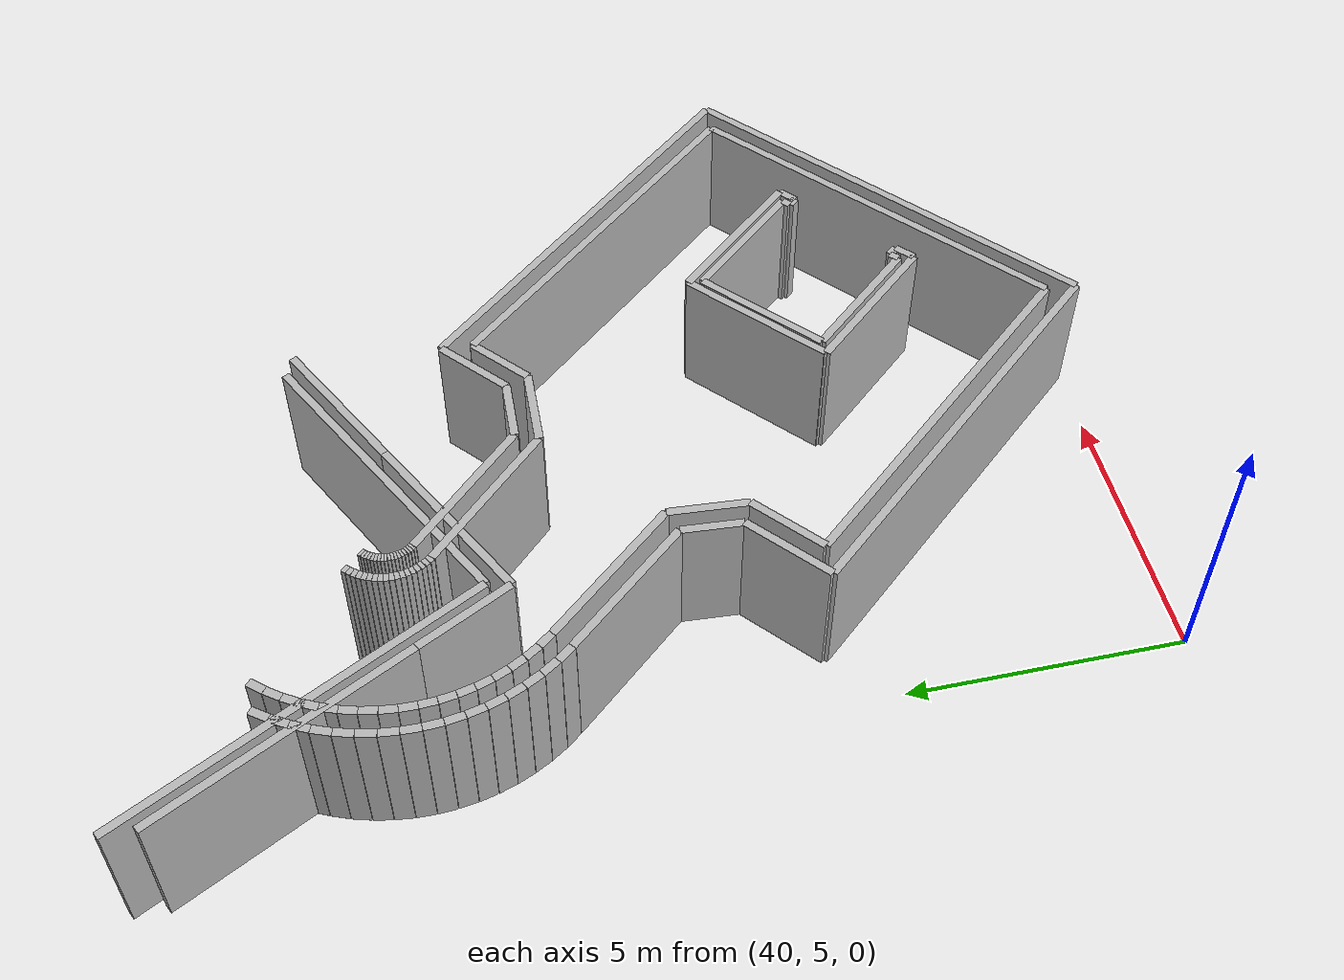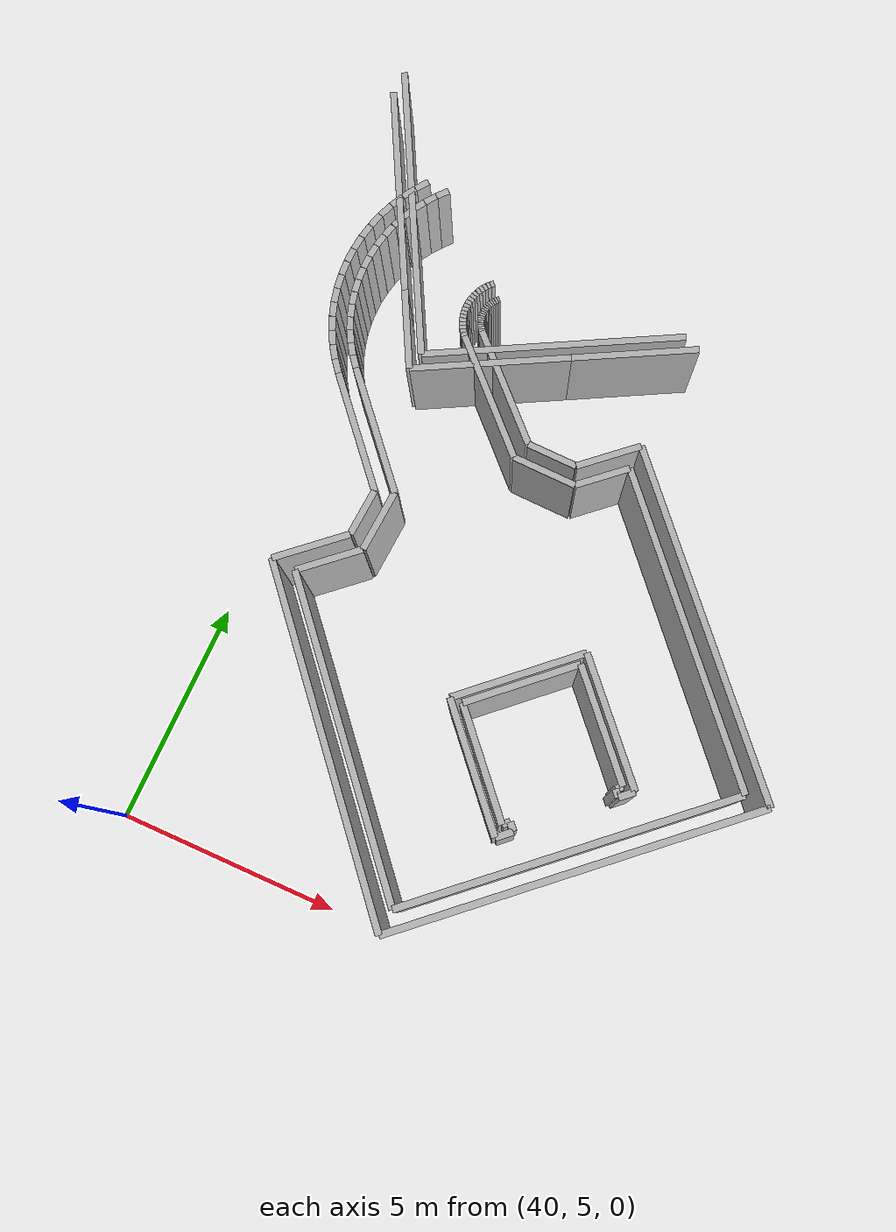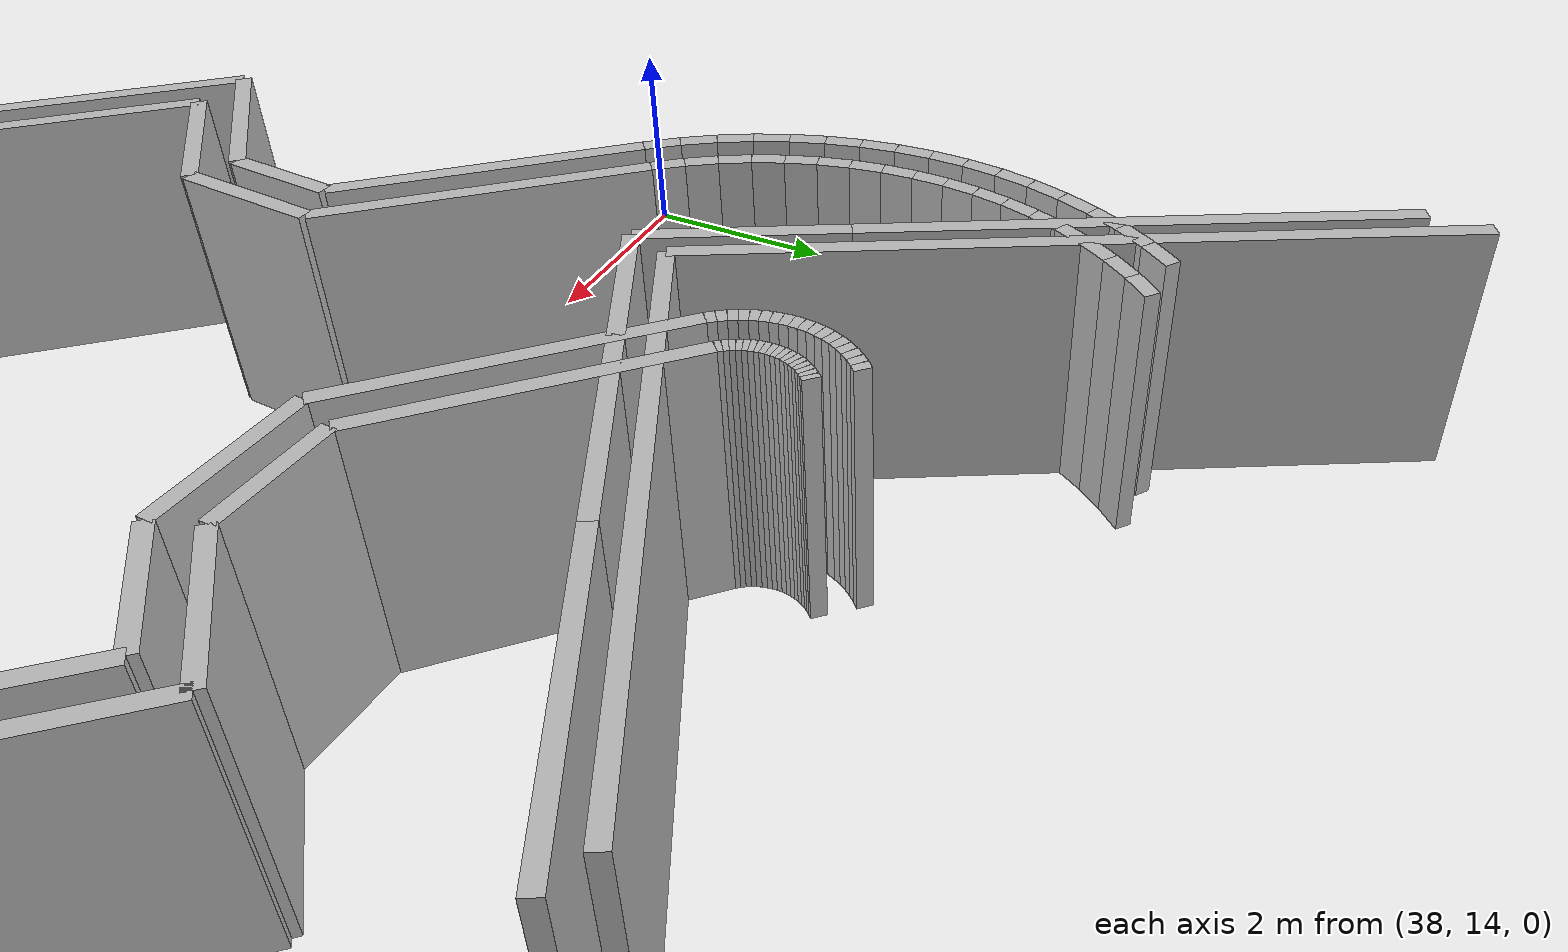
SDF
<sdf version="1.6">
 <model name="sps_0505">
  <static>1</static>
  <allow_auto_disable>0</allow_auto_disable>
  <link name="Wall111">
   <collision name="collision"><geometry><box><size>8.10007 0.15 2.5</size></box></geometry></collision>
   <visual name="visual">
    <geometry><box><size>8.10007 0.15 2.5</size></box></geometry>
    <transparency>0.0</transparency>
   </visual>
   <pose>43.6384 8.1064 1.25 0 -0 2.28845</pose>
  </link>
  <link name="Wall491">
   <collision name="collision"><geometry><box><size>4.96539 0.15 2.5</size></box></geometry></collision>
   <visual name="visual">
    <geometry><box><size>4.96539 0.15 2.5</size></box></geometry>
    <transparency>0.0</transparency>
   </visual>
   <pose>39.8523 20.0937 1.25 0 0 -1.08945</pose>
  </link>
  <link name="Wall492">
   <collision name="collision"><geometry><box><size>1.8674 0.15 2.5</size></box></geometry></collision>
   <visual name="visual">
    <geometry><box><size>1.8674 0.15 2.5</size></box></geometry>
    <transparency>0.0</transparency>
   </visual>
   <pose>41.434 17.0655 1.25 0 0 -1.08945</pose>
  </link>
  <link name="Wall504">
   <collision name="collision"><geometry><box><size>7.29947 0.15 2.5</size></box></geometry></collision>
   <visual name="visual">
    <geometry><box><size>7.29947 0.15 2.5</size></box></geometry>
    <transparency>0.0</transparency>
   </visual>
   <pose>49.5895 13.3021 1.25 0 0 -0.853083</pose>
  </link>
  <link name="Wall835">
   <collision name="collision"><geometry><box><size>1.73339 0.15 2.5</size></box></geometry></collision>
   <visual name="visual">
    <geometry><box><size>1.73339 0.15 2.5</size></box></geometry>
    <transparency>0.0</transparency>
   </visual>
   <pose>41.6279 11.7276 1.25 0 -0 0.717873</pose>
  </link>
  <link name="Wall836">
   <collision name="collision"><geometry><box><size>2.83453 0.15 2.5</size></box></geometry></collision>
   <visual name="visual">
    <geometry><box><size>2.83453 0.15 2.5</size></box></geometry>
    <transparency>0.0</transparency>
   </visual>
   <pose>41.4219 14.4457 1.25 0 -0 2.28852</pose>
  </link>
  <link name="Wall837">
   <collision name="collision"><geometry><box><size>1.14115 0.15 2.5</size></box></geometry></collision>
   <visual name="visual">
    <geometry><box><size>1.14115 0.15 2.5</size></box></geometry>
    <transparency>0.0</transparency>
   </visual>
   <pose>45.5337 15.6559 1.25 0 0 -0.0368063</pose>
  </link>
  <link name="Wall842">
   <collision name="collision"><geometry><box><size>8.30061 0.15 2.5</size></box></geometry></collision>
   <visual name="visual">
    <geometry><box><size>8.30061 0.15 2.5</size></box></geometry>
    <transparency>0.0</transparency>
   </visual>
   <pose>49.4281 7.78511 1.25 0 0 -2.42379</pose>
  </link>
  <link name="Wall1241">
   <collision name="collision"><geometry><box><size>1.08287 0.15 2.5</size></box></geometry></collision>
   <visual name="visual">
    <geometry><box><size>1.08287 0.15 2.5</size></box></geometry>
    <transparency>0.0</transparency>
   </visual>
   <pose>42.3173 12.8379 1.25 0 -0 1.50299</pose>
  </link>
  <link name="Wall1244">
   <collision name="collision"><geometry><box><size>3.0084 0.15 2.5</size></box></geometry></collision>
   <visual name="visual">
    <geometry><box><size>3.0084 0.15 2.5</size></box></geometry>
    <transparency>0.0</transparency>
   </visual>
   <pose>43.7328 16.3517 1.25 0 0 -0.790663</pose>
  </link>
  <link name="Wall1248">
   <collision name="collision"><geometry><box><size>7.50063 0.15 2.5</size></box></geometry></collision>
   <visual name="visual">
    <geometry><box><size>7.50063 0.15 2.5</size></box></geometry>
    <transparency>0.0</transparency>
   </visual>
   <pose>49.1646 8.08629 1.25 0 0 -2.4239</pose>
  </link>
  <link name="Wall1538">
   <collision name="collision"><geometry><box><size>1.45714 0.15 2.5</size></box></geometry></collision>
   <visual name="visual">
    <geometry><box><size>1.45714 0.15 2.5</size></box></geometry>
    <transparency>0.0</transparency>
   </visual>
   <pose>45.5189 15.256 1.25 0 0 -0.0363659</pose>
  </link>
  <link name="Wall1539">
   <collision name="collision"><geometry><box><size>7.29966 0.15 2.5</size></box></geometry></collision>
   <visual name="visual">
    <geometry><box><size>7.29966 0.15 2.5</size></box></geometry>
    <transparency>0.0</transparency>
   </visual>
   <pose>43.9391 8.3694 1.25 0 -0 2.28849</pose>
  </link>
  <link name="Wall1847">
   <collision name="collision"><geometry><box><size>1.25034 0.15 2.5</size></box></geometry></collision>
   <visual name="visual">
    <geometry><box><size>1.25034 0.15 2.5</size></box></geometry>
    <transparency>0.0</transparency>
   </visual>
   <pose>46.7181 15.6405 1.25 0 -0 0.717347</pose>
  </link>
  <link name="Wall2184">
   <collision name="collision"><geometry><box><size>3.00035 0.15 2.5</size></box></geometry></collision>
   <visual name="visual">
    <geometry><box><size>3.00035 0.15 2.5</size></box></geometry>
    <transparency>0.0</transparency>
   </visual>
   <pose>41.7782 14.6467 1.25 0 -0 2.28842</pose>
  </link>
  <link name="Wall2185">
   <collision name="collision"><geometry><box><size>2.82436 0.15 2.5</size></box></geometry></collision>
   <visual name="visual">
    <geometry><box><size>2.82436 0.15 2.5</size></box></geometry>
    <transparency>0.0</transparency>
   </visual>
   <pose>43.9697 16.6803 1.25 0 0 -0.790242</pose>
  </link>
  <link name="Wall2571">
   <collision name="collision"><geometry><box><size>1.50062 0.15 2.5</size></box></geometry></collision>
   <visual name="visual">
    <geometry><box><size>1.50062 0.15 2.5</size></box></geometry>
    <transparency>0.0</transparency>
   </visual>
   <pose>42.1039 11.6125 1.25 0 -0 0.717961</pose>
  </link>
  <link name="Wall2572">
   <collision name="collision"><geometry><box><size>1.41364 0.15 2.5</size></box></geometry></collision>
   <visual name="visual">
    <geometry><box><size>1.41364 0.15 2.5</size></box></geometry>
    <transparency>0.0</transparency>
   </visual>
   <pose>42.7168 12.8113 1.25 0 -0 1.50309</pose>
  </link>
  <link name="Wall2574">
   <collision name="collision"><geometry><box><size>1.49144 0.15 2.5</size></box></geometry></collision>
   <visual name="visual">
    <geometry><box><size>1.49144 0.15 2.5</size></box></geometry>
    <transparency>0.0</transparency>
   </visual>
   <pose>46.6655 16.1255 1.25 0 -0 0.71801</pose>
  </link>
  <link name="Wall2575">
   <collision name="collision"><geometry><box><size>3.5753 0.15 2.5</size></box></geometry></collision>
   <visual name="visual">
    <geometry><box><size>3.5753 0.15 2.5</size></box></geometry>
    <transparency>0.0</transparency>
   </visual>
   <pose>43.4508 17.0655 1.25 0 -0 0.48133</pose>
  </link>
  <link name="Wall2576">
   <collision name="collision"><geometry><box><size>2.83912 0.15 2.5</size></box></geometry></collision>
   <visual name="visual">
    <geometry><box><size>2.83912 0.15 2.5</size></box></geometry>
    <transparency>0.0</transparency>
   </visual>
   <pose>46.2936 18.5503 1.25 0 -0 0.48133</pose>
  </link>
  <link name="Wall2580">
   <collision name="collision"><geometry><box><size>8.09961 0.15 2.5</size></box></geometry></collision>
   <visual name="visual">
    <geometry><box><size>8.09961 0.15 2.5</size></box></geometry>
    <transparency>0.0</transparency>
   </visual>
   <pose>49.8907 13.5655 1.25 0 0 -0.85302</pose>
  </link>
  <link name="Wall6915">
   <collision name="collision"><geometry><box><size>0.340145 0.15 2.5</size></box></geometry></collision>
   <visual name="visual">
    <geometry><box><size>0.340145 0.15 2.5</size></box></geometry>
    <transparency>0.0</transparency>
   </visual>
   <pose>40.3841 15.6465 1.25 0 -0 2.24201</pose>
  </link>
  <link name="Wall6916">
   <collision name="collision"><geometry><box><size>0.339766 0.15 2.5</size></box></geometry></collision>
   <visual name="visual">
    <geometry><box><size>0.339766 0.15 2.5</size></box></geometry>
    <transparency>0.0</transparency>
   </visual>
   <pose>40.1846 15.9214 1.25 0 -0 2.15516</pose>
  </link>
  <link name="Wall6917">
   <collision name="collision"><geometry><box><size>0.339996 0.15 2.5</size></box></geometry></collision>
   <visual name="visual">
    <geometry><box><size>0.339996 0.15 2.5</size></box></geometry>
    <transparency>0.0</transparency>
   </visual>
   <pose>40.0098 16.2125 1.25 0 -0 2.06801</pose>
  </link>
  <link name="Wall6918">
   <collision name="collision"><geometry><box><size>0.340044 0.15 2.5</size></box></geometry></collision>
   <visual name="visual">
    <geometry><box><size>0.340044 0.15 2.5</size></box></geometry>
    <transparency>0.0</transparency>
   </visual>
   <pose>39.8609 16.5178 1.25 0 -0 1.98104</pose>
  </link>
  <link name="Wall6919">
   <collision name="collision"><geometry><box><size>0.340065 0.15 2.5</size></box></geometry></collision>
   <visual name="visual">
    <geometry><box><size>0.340065 0.15 2.5</size></box></geometry>
    <transparency>0.0</transparency>
   </visual>
   <pose>39.7389 16.8349 1.25 0 -0 1.89465</pose>
  </link>
  <link name="Wall6920">
   <collision name="collision"><geometry><box><size>0.339835 0.15 2.5</size></box></geometry></collision>
   <visual name="visual">
    <geometry><box><size>0.339835 0.15 2.5</size></box></geometry>
    <transparency>0.0</transparency>
   </visual>
   <pose>39.645 17.1613 1.25 0 -0 1.80719</pose>
  </link>
  <link name="Wall6921">
   <collision name="collision"><geometry><box><size>0.339968 0.15 2.5</size></box></geometry></collision>
   <visual name="visual">
    <geometry><box><size>0.339968 0.15 2.5</size></box></geometry>
    <transparency>0.0</transparency>
   </visual>
   <pose>39.5799 17.4946 1.25 0 -0 1.72018</pose>
  </link>
  <link name="Wall6922">
   <collision name="collision"><geometry><box><size>0.339909 0.15 2.5</size></box></geometry></collision>
   <visual name="visual">
    <geometry><box><size>0.339909 0.15 2.5</size></box></geometry>
    <transparency>0.0</transparency>
   </visual>
   <pose>39.5439 17.8323 1.25 0 -0 1.63386</pose>
  </link>
  <link name="Wall6923">
   <collision name="collision"><geometry><box><size>0.34007 0.15 2.5</size></box></geometry></collision>
   <visual name="visual">
    <geometry><box><size>0.34007 0.15 2.5</size></box></geometry>
    <transparency>0.0</transparency>
   </visual>
   <pose>39.5374 18.1719 1.25 0 -0 1.54603</pose>
  </link>
  <link name="Wall6924">
   <collision name="collision"><geometry><box><size>0.339915 0.15 2.5</size></box></geometry></collision>
   <visual name="visual">
    <geometry><box><size>0.339915 0.15 2.5</size></box></geometry>
    <transparency>0.0</transparency>
   </visual>
   <pose>39.5604 18.5108 1.25 0 -0 1.45996</pose>
  </link>
  <link name="Wall6925">
   <collision name="collision"><geometry><box><size>0.340043 0.15 2.5</size></box></geometry></collision>
   <visual name="visual">
    <geometry><box><size>0.340043 0.15 2.5</size></box></geometry>
    <transparency>0.0</transparency>
   </visual>
   <pose>39.6128 18.8464 1.25 0 -0 1.37242</pose>
  </link>
  <link name="Wall6926">
   <collision name="collision"><geometry><box><size>0.339947 0.15 2.5</size></box></geometry></collision>
   <visual name="visual">
    <geometry><box><size>0.339947 0.15 2.5</size></box></geometry>
    <transparency>0.0</transparency>
   </visual>
   <pose>39.6941 19.1762 1.25 0 -0 1.28579</pose>
  </link>
  <link name="Wall6927">
   <collision name="collision"><geometry><box><size>0.33986 0.15 2.5</size></box></geometry></collision>
   <visual name="visual">
    <geometry><box><size>0.33986 0.15 2.5</size></box></geometry>
    <transparency>0.0</transparency>
   </visual>
   <pose>39.8036 19.4976 1.25 0 -0 1.19859</pose>
  </link>
  <link name="Wall6928">
   <collision name="collision"><geometry><box><size>0.339891 0.15 2.5</size></box></geometry></collision>
   <visual name="visual">
    <geometry><box><size>0.339891 0.15 2.5</size></box></geometry>
    <transparency>0.0</transparency>
   </visual>
   <pose>39.9406 19.8083 1.25 0 -0 1.11245</pose>
  </link>
  <link name="Wall6929">
   <collision name="collision"><geometry><box><size>0.340061 0.15 2.5</size></box></geometry></collision>
   <visual name="visual">
    <geometry><box><size>0.340061 0.15 2.5</size></box></geometry>
    <transparency>0.0</transparency>
   </visual>
   <pose>40.1041 20.106 1.25 0 -0 1.02462</pose>
  </link>
  <link name="Wall6930">
   <collision name="collision"><geometry><box><size>0.339949 0.15 2.5</size></box></geometry></collision>
   <visual name="visual">
    <geometry><box><size>0.339949 0.15 2.5</size></box></geometry>
    <transparency>0.0</transparency>
   </visual>
   <pose>40.293 20.3884 1.25 0 -0 0.938212</pose>
  </link>
  <link name="Wall9624">
   <collision name="collision"><geometry><box><size>0.0522454 0.15 2.5</size></box></geometry></collision>
   <visual name="visual">
    <geometry><box><size>0.0522454 0.15 2.5</size></box></geometry>
    <transparency>0.0</transparency>
   </visual>
   <pose>42.9597 17.7041 1.25 0 -0 2.24444</pose>
  </link>
  <link name="Wall9625">
   <collision name="collision"><geometry><box><size>0.0523934 0.15 2.5</size></box></geometry></collision>
   <visual name="visual">
    <geometry><box><size>0.0523934 0.15 2.5</size></box></geometry>
    <transparency>0.0</transparency>
   </visual>
   <pose>42.929 17.7464 1.25 0 -0 2.15298</pose>
  </link>
  <link name="Wall9626">
   <collision name="collision"><geometry><box><size>0.0523551 0.15 2.5</size></box></geometry></collision>
   <visual name="visual">
    <geometry><box><size>0.0523551 0.15 2.5</size></box></geometry>
    <transparency>0.0</transparency>
   </visual>
   <pose>42.9022 17.7913 1.25 0 -0 2.06782</pose>
  </link>
  <link name="Wall9627">
   <collision name="collision"><geometry><box><size>0.0523499 0.15 2.5</size></box></geometry></collision>
   <visual name="visual">
    <geometry><box><size>0.0523499 0.15 2.5</size></box></geometry>
    <transparency>0.0</transparency>
   </visual>
   <pose>42.8793 17.8383 1.25 0 -0 1.97967</pose>
  </link>
  <link name="Wall9628">
   <collision name="collision"><geometry><box><size>0.0522672 0.15 2.5</size></box></geometry></collision>
   <visual name="visual">
    <geometry><box><size>0.0522672 0.15 2.5</size></box></geometry>
    <transparency>0.0</transparency>
   </visual>
   <pose>42.8606 17.8871 1.25 0 -0 1.89402</pose>
  </link>
  <link name="Wall9629">
   <collision name="collision"><geometry><box><size>0.0522872 0.15 2.5</size></box></geometry></collision>
   <visual name="visual">
    <geometry><box><size>0.0522872 0.15 2.5</size></box></geometry>
    <transparency>0.0</transparency>
   </visual>
   <pose>42.8462 17.9373 1.25 0 -0 1.80643</pose>
  </link>
  <link name="Wall9630">
   <collision name="collision"><geometry><box><size>0.0523441 0.15 2.5</size></box></geometry></collision>
   <visual name="visual">
    <geometry><box><size>0.0523441 0.15 2.5</size></box></geometry>
    <transparency>0.0</transparency>
   </visual>
   <pose>42.8361 17.9886 1.25 0 -0 1.72061</pose>
  </link>
  <link name="Wall9631">
   <collision name="collision"><geometry><box><size>0.0522929 0.15 2.5</size></box></geometry></collision>
   <visual name="visual">
    <geometry><box><size>0.0522929 0.15 2.5</size></box></geometry>
    <transparency>0.0</transparency>
   </visual>
   <pose>42.8306 18.0406 1.25 0 -0 1.63504</pose>
  </link>
  <link name="Wall9632">
   <collision name="collision"><geometry><box><size>0.052442 0.15 2.5</size></box></geometry></collision>
   <visual name="visual">
    <geometry><box><size>0.052442 0.15 2.5</size></box></geometry>
    <transparency>0.0</transparency>
   </visual>
   <pose>42.8295 18.0929 1.25 0 -0 1.54868</pose>
  </link>
  <link name="Wall9633">
   <collision name="collision"><geometry><box><size>0.0523518 0.15 2.5</size></box></geometry></collision>
   <visual name="visual">
    <geometry><box><size>0.0523518 0.15 2.5</size></box></geometry>
    <transparency>0.0</transparency>
   </visual>
   <pose>42.8331 18.1451 1.25 0 -0 1.45512</pose>
  </link>
  <link name="Wall9634">
   <collision name="collision"><geometry><box><size>0.0523927 0.15 2.5</size></box></geometry></collision>
   <visual name="visual">
    <geometry><box><size>0.0523927 0.15 2.5</size></box></geometry>
    <transparency>0.0</transparency>
   </visual>
   <pose>42.8412 18.1968 1.25 0 -0 1.375</pose>
  </link>
  <link name="Wall9635">
   <collision name="collision"><geometry><box><size>0.0523585 0.15 2.5</size></box></geometry></collision>
   <visual name="visual">
    <geometry><box><size>0.0523585 0.15 2.5</size></box></geometry>
    <transparency>0.0</transparency>
   </visual>
   <pose>42.8537 18.2476 1.25 0 -0 1.28481</pose>
  </link>
  <link name="Wall9636">
   <collision name="collision"><geometry><box><size>0.0523311 0.15 2.5</size></box></geometry></collision>
   <visual name="visual">
    <geometry><box><size>0.0523311 0.15 2.5</size></box></geometry>
    <transparency>0.0</transparency>
   </visual>
   <pose>42.8705 18.2971 1.25 0 -0 1.1996</pose>
  </link>
  <link name="Wall9637">
   <collision name="collision"><geometry><box><size>0.0522715 0.15 2.5</size></box></geometry></collision>
   <visual name="visual">
    <geometry><box><size>0.0522715 0.15 2.5</size></box></geometry>
    <transparency>0.0</transparency>
   </visual>
   <pose>42.8917 18.3449 1.25 0 -0 1.10976</pose>
  </link>
  <link name="Wall9638">
   <collision name="collision"><geometry><box><size>0.0523901 0.15 2.5</size></box></geometry></collision>
   <visual name="visual">
    <geometry><box><size>0.0523901 0.15 2.5</size></box></geometry>
    <transparency>0.0</transparency>
   </visual>
   <pose>42.9169 18.3907 1.25 0 -0 1.02578</pose>
  </link>
  <link name="Wall9639">
   <collision name="collision"><geometry><box><size>0.0523461 0.15 2.5</size></box></geometry></collision>
   <visual name="visual">
    <geometry><box><size>0.0523461 0.15 2.5</size></box></geometry>
    <transparency>0.0</transparency>
   </visual>
   <pose>42.9459 18.4342 1.25 0 -0 0.936856</pose>
  </link>
  <link name="Wall9640">
   <collision name="collision"><geometry><box><size>0.0523414 0.15 2.5</size></box></geometry></collision>
   <visual name="visual">
    <geometry><box><size>0.0523414 0.15 2.5</size></box></geometry>
    <transparency>0.0</transparency>
   </visual>
   <pose>42.9787 18.475 1.25 0 -0 0.853063</pose>
  </link>
  <link name="Wall9641">
   <collision name="collision"><geometry><box><size>0.05232 0.15 2.5</size></box></geometry></collision>
   <visual name="visual">
    <geometry><box><size>0.05232 0.15 2.5</size></box></geometry>
    <transparency>0.0</transparency>
   </visual>
   <pose>43.0148 18.5128 1.25 0 -0 0.763949</pose>
  </link>
  <link name="Wall12904">
   <collision name="collision"><geometry><box><size>0.305219 0.15 2.5</size></box></geometry></collision>
   <visual name="visual">
    <geometry><box><size>0.305219 0.15 2.5</size></box></geometry>
    <transparency>0.0</transparency>
   </visual>
   <pose>40.6967 15.8964 1.25 0 -0 2.24198</pose>
  </link>
  <link name="Wall12905">
   <collision name="collision"><geometry><box><size>0.304945 0.15 2.5</size></box></geometry></collision>
   <visual name="visual">
    <geometry><box><size>0.304945 0.15 2.5</size></box></geometry>
    <transparency>0.0</transparency>
   </visual>
   <pose>40.5178 16.1431 1.25 0 -0 2.15486</pose>
  </link>
  <link name="Wall12906">
   <collision name="collision"><geometry><box><size>0.304929 0.15 2.5</size></box></geometry></collision>
   <visual name="visual">
    <geometry><box><size>0.304929 0.15 2.5</size></box></geometry>
    <transparency>0.0</transparency>
   </visual>
   <pose>40.361 16.4043 1.25 0 -0 2.06802</pose>
  </link>
  <link name="Wall12907">
   <collision name="collision"><geometry><box><size>0.305134 0.15 2.5</size></box></geometry></collision>
   <visual name="visual">
    <geometry><box><size>0.305134 0.15 2.5</size></box></geometry>
    <transparency>0.0</transparency>
   </visual>
   <pose>40.2273 16.6782 1.25 0 -0 1.98128</pose>
  </link>
  <link name="Wall12908">
   <collision name="collision"><geometry><box><size>0.305072 0.15 2.5</size></box></geometry></collision>
   <visual name="visual">
    <geometry><box><size>0.305072 0.15 2.5</size></box></geometry>
    <transparency>0.0</transparency>
   </visual>
   <pose>40.118 16.9627 1.25 0 -0 1.89432</pose>
  </link>
  <link name="Wall12909">
   <collision name="collision"><geometry><box><size>0.304868 0.15 2.5</size></box></geometry></collision>
   <visual name="visual">
    <geometry><box><size>0.304868 0.15 2.5</size></box></geometry>
    <transparency>0.0</transparency>
   </visual>
   <pose>40.0338 17.2555 1.25 0 -0 1.80723</pose>
  </link>
  <link name="Wall12910">
   <collision name="collision"><geometry><box><size>0.304974 0.15 2.5</size></box></geometry></collision>
   <visual name="visual">
    <geometry><box><size>0.304974 0.15 2.5</size></box></geometry>
    <transparency>0.0</transparency>
   </visual>
   <pose>39.9754 17.5545 1.25 0 -0 1.72025</pose>
  </link>
  <link name="Wall12911">
   <collision name="collision"><geometry><box><size>0.305233 0.15 2.5</size></box></geometry></collision>
   <visual name="visual">
    <geometry><box><size>0.305233 0.15 2.5</size></box></geometry>
    <transparency>0.0</transparency>
   </visual>
   <pose>39.943 17.8576 1.25 0 -0 1.63383</pose>
  </link>
  <link name="Wall12912">
   <collision name="collision"><geometry><box><size>0.304901 0.15 2.5</size></box></geometry></collision>
   <visual name="visual">
    <geometry><box><size>0.304901 0.15 2.5</size></box></geometry>
    <transparency>0.0</transparency>
   </visual>
   <pose>39.9372 18.1623 1.25 0 -0 1.54637</pose>
  </link>
  <link name="Wall12913">
   <collision name="collision"><geometry><box><size>0.305035 0.15 2.5</size></box></geometry></collision>
   <visual name="visual">
    <geometry><box><size>0.305035 0.15 2.5</size></box></geometry>
    <transparency>0.0</transparency>
   </visual>
   <pose>39.9578 18.4663 1.25 0 -0 1.45992</pose>
  </link>
  <link name="Wall12914">
   <collision name="collision"><geometry><box><size>0.305151 0.15 2.5</size></box></geometry></collision>
   <visual name="visual">
    <geometry><box><size>0.305151 0.15 2.5</size></box></geometry>
    <transparency>0.0</transparency>
   </visual>
   <pose>40.0046 18.7675 1.25 0 -0 1.37289</pose>
  </link>
  <link name="Wall12915">
   <collision name="collision"><geometry><box><size>0.304927 0.15 2.5</size></box></geometry></collision>
   <visual name="visual">
    <geometry><box><size>0.304927 0.15 2.5</size></box></geometry>
    <transparency>0.0</transparency>
   </visual>
   <pose>40.0775 19.0634 1.25 0 -0 1.28551</pose>
  </link>
  <link name="Wall12916">
   <collision name="collision"><geometry><box><size>0.305154 0.15 2.5</size></box></geometry></collision>
   <visual name="visual">
    <geometry><box><size>0.305154 0.15 2.5</size></box></geometry>
    <transparency>0.0</transparency>
   </visual>
   <pose>40.176 19.3518 1.25 0 -0 1.19842</pose>
  </link>
  <link name="Wall12917">
   <collision name="collision"><geometry><box><size>0.305061 0.15 2.5</size></box></geometry></collision>
   <visual name="visual">
    <geometry><box><size>0.305061 0.15 2.5</size></box></geometry>
    <transparency>0.0</transparency>
   </visual>
   <pose>40.299 19.6307 1.25 0 -0 1.11234</pose>
  </link>
  <link name="Wall12918">
   <collision name="collision"><geometry><box><size>0.304974 0.15 2.5</size></box></geometry></collision>
   <visual name="visual">
    <geometry><box><size>0.304974 0.15 2.5</size></box></geometry>
    <transparency>0.0</transparency>
   </visual>
   <pose>40.4457 19.8978 1.25 0 -0 1.02471</pose>
  </link>
  <link name="Wall12919">
   <collision name="collision"><geometry><box><size>0.305096 0.15 2.5</size></box></geometry></collision>
   <visual name="visual">
    <geometry><box><size>0.305096 0.15 2.5</size></box></geometry>
    <transparency>0.0</transparency>
   </visual>
   <pose>40.6151 20.1511 1.25 0 -0 0.938058</pose>
  </link>
  <link name="Wall12920">
   <collision name="collision"><geometry><box><size>0.304971 0.15 2.5</size></box></geometry></collision>
   <visual name="visual">
    <geometry><box><size>0.304971 0.15 2.5</size></box></geometry>
    <transparency>0.0</transparency>
   </visual>
   <pose>40.8058 20.3888 1.25 0 -0 0.851251</pose>
  </link>
  <link name="Wall12922">
   <collision name="collision"><geometry><box><size>7.01529 0.15 2.5</size></box></geometry></collision>
   <visual name="visual">
    <geometry><box><size>7.01529 0.15 2.5</size></box></geometry>
    <transparency>0.0</transparency>
   </visual>
   <pose>40.3463 19.7556 1.25 0 0 -1.08946</pose>
  </link>
  <link name="Wall12923">
   <collision name="collision"><geometry><box><size>5.87311 0.15 2.5</size></box></geometry></collision>
   <visual name="visual">
    <geometry><box><size>5.87311 0.15 2.5</size></box></geometry>
    <transparency>0.0</transparency>
   </visual>
   <pose>44.5731 18.006 1.25 0 -0 0.481328</pose>
  </link>
  <link name="Wall16724">
   <collision name="collision"><geometry><box><size>2.98665 0.15 2.5</size></box></geometry></collision>
   <visual name="visual">
    <geometry><box><size>2.98665 0.15 2.5</size></box></geometry>
    <transparency>0.0</transparency>
   </visual>
   <pose>46.7842 10.966 1.25 0 -0 0.728983</pose>
  </link>
  <link name="Wall16725">
   <collision name="collision"><geometry><box><size>3.01582 0.15 2.5</size></box></geometry></collision>
   <visual name="visual">
    <geometry><box><size>3.01582 0.15 2.5</size></box></geometry>
    <transparency>0.0</transparency>
   </visual>
   <pose>48.9025 10.8361 1.25 0 0 -0.84174</pose>
  </link>
  <link name="Wall16726">
   <collision name="collision"><geometry><box><size>0.361328 0.15 2.5</size></box></geometry></collision>
   <visual name="visual">
    <geometry><box><size>0.361328 0.15 2.5</size></box></geometry>
    <transparency>0.0</transparency>
   </visual>
   <pose>49.7724 9.59111 1.25 0 0 -2.41224</pose>
  </link>
  <link name="Wall16727">
   <collision name="collision"><geometry><box><size>0.182154 0.15 2.5</size></box></geometry></collision>
   <visual name="visual">
    <geometry><box><size>0.182154 0.15 2.5</size></box></geometry>
    <transparency>0.0</transparency>
   </visual>
   <pose>49.577 9.53862 1.25 0 -0 2.30025</pose>
  </link>
  <link name="Wall16728">
   <collision name="collision"><geometry><box><size>0.163846 0.15 2.5</size></box></geometry></collision>
   <visual name="visual">
    <geometry><box><size>0.163846 0.15 2.5</size></box></geometry>
    <transparency>0.0</transparency>
   </visual>
   <pose>49.5774 9.66099 1.25 0 -0 0.727416</pose>
  </link>
  <link name="Wall16729">
   <collision name="collision"><geometry><box><size>2.65092 0.15 2.5</size></box></geometry></collision>
   <visual name="visual">
    <geometry><box><size>2.65092 0.15 2.5</size></box></geometry>
    <transparency>0.0</transparency>
   </visual>
   <pose>48.7559 10.7042 1.25 0 -0 2.29965</pose>
  </link>
  <link name="Wall16730">
   <collision name="collision"><geometry><box><size>2.59044 0.15 2.5</size></box></geometry></collision>
   <visual name="visual">
    <geometry><box><size>2.59044 0.15 2.5</size></box></geometry>
    <transparency>0.0</transparency>
   </visual>
   <pose>46.907 10.8302 1.25 0 0 -2.41267</pose>
  </link>
  <link name="Wall16731">
   <collision name="collision"><geometry><box><size>2.60971 0.15 2.5</size></box></geometry></collision>
   <visual name="visual">
    <geometry><box><size>2.60971 0.15 2.5</size></box></geometry>
    <transparency>0.0</transparency>
   </visual>
   <pose>46.8101 8.99428 1.25 0 0 -0.841788</pose>
  </link>
  <link name="Wall16732">
   <collision name="collision"><geometry><box><size>0.179473 0.15 2.5</size></box></geometry></collision>
   <visual name="visual">
    <geometry><box><size>0.179473 0.15 2.5</size></box></geometry>
    <transparency>0.0</transparency>
   </visual>
   <pose>47.7462 8.08089 1.25 0 -0 0.72958</pose>
  </link>
  <link name="Wall16733">
   <collision name="collision"><geometry><box><size>0.201395 0.15 2.5</size></box></geometry></collision>
   <visual name="visual">
    <geometry><box><size>0.201395 0.15 2.5</size></box></geometry>
    <transparency>0.0</transparency>
   </visual>
   <pose>47.8801 8.0656 1.25 0 0 -0.841788</pose>
  </link>
  <link name="Wall16734">
   <collision name="collision"><geometry><box><size>0.394624 0.15 2.5</size></box></geometry></collision>
   <visual name="visual">
    <geometry><box><size>0.394624 0.15 2.5</size></box></geometry>
    <transparency>0.0</transparency>
   </visual>
   <pose>47.8 7.85908 1.25 0 0 -2.41277</pose>
  </link>
  <link name="Wall16735">
   <collision name="collision"><geometry><box><size>2.99399 0.15 2.5</size></box></geometry></collision>
   <visual name="visual">
    <geometry><box><size>2.99399 0.15 2.5</size></box></geometry>
    <transparency>0.0</transparency>
   </visual>
   <pose>46.6557 8.84419 1.25 0 -0 2.2998</pose>
  </link>
  <link name="Wall16736">
   <collision name="collision"><geometry><box><size>0.0159563 0.15 2.5</size></box></geometry></collision>
   <visual name="visual">
    <geometry><box><size>0.0159563 0.15 2.5</size></box></geometry>
    <transparency>0.0</transparency>
   </visual>
   <pose>45.6645 9.96599 1.25 0 -0 0.723148</pose>
  </link>
  <link name="Wall27782">
   <collision name="collision"><geometry><box><size>0.0870951 0.15 2.5</size></box></geometry></collision>
   <visual name="visual">
    <geometry><box><size>0.0870951 0.15 2.5</size></box></geometry>
    <transparency>0.0</transparency>
   </visual>
   <pose>42.6477 17.455 1.25 0 -0 2.24247</pose>
  </link>
  <link name="Wall27783">
   <collision name="collision"><geometry><box><size>0.087198 0.15 2.5</size></box></geometry></collision>
   <visual name="visual">
    <geometry><box><size>0.087198 0.15 2.5</size></box></geometry>
    <transparency>0.0</transparency>
   </visual>
   <pose>42.5966 17.5255 1.25 0 -0 2.15336</pose>
  </link>
  <link name="Wall27784">
   <collision name="collision"><geometry><box><size>0.087018 0.15 2.5</size></box></geometry></collision>
   <visual name="visual">
    <geometry><box><size>0.087018 0.15 2.5</size></box></geometry>
    <transparency>0.0</transparency>
   </visual>
   <pose>42.5518 17.6001 1.25 0 -0 2.06958</pose>
  </link>
  <link name="Wall27785">
   <collision name="collision"><geometry><box><size>0.087197 0.15 2.5</size></box></geometry></collision>
   <visual name="visual">
    <geometry><box><size>0.087197 0.15 2.5</size></box></geometry>
    <transparency>0.0</transparency>
   </visual>
   <pose>42.5136 17.6783 1.25 0 -0 1.9812</pose>
  </link>
  <link name="Wall27786">
   <collision name="collision"><geometry><box><size>0.0871248 0.15 2.5</size></box></geometry></collision>
   <visual name="visual">
    <geometry><box><size>0.0871248 0.15 2.5</size></box></geometry>
    <transparency>0.0</transparency>
   </visual>
   <pose>42.4824 17.7596 1.25 0 -0 1.89299</pose>
  </link>
  <link name="Wall27787">
   <collision name="collision"><geometry><box><size>0.0872374 0.15 2.5</size></box></geometry></collision>
   <visual name="visual">
    <geometry><box><size>0.0872374 0.15 2.5</size></box></geometry>
    <transparency>0.0</transparency>
   </visual>
   <pose>42.4584 17.8433 1.25 0 -0 1.80882</pose>
  </link>
  <link name="Wall27788">
   <collision name="collision"><geometry><box><size>0.0869485 0.15 2.5</size></box></geometry></collision>
   <visual name="visual">
    <geometry><box><size>0.0869485 0.15 2.5</size></box></geometry>
    <transparency>0.0</transparency>
   </visual>
   <pose>42.4417 17.9287 1.25 0 -0 1.71875</pose>
  </link>
  <link name="Wall27789">
   <collision name="collision"><geometry><box><size>0.0871562 0.15 2.5</size></box></geometry></collision>
   <visual name="visual">
    <geometry><box><size>0.0871562 0.15 2.5</size></box></geometry>
    <transparency>0.0</transparency>
   </visual>
   <pose>42.4325 18.0152 1.25 0 -0 1.63527</pose>
  </link>
  <link name="Wall27790">
   <collision name="collision"><geometry><box><size>0.0872469 0.15 2.5</size></box></geometry></collision>
   <visual name="visual">
    <geometry><box><size>0.0872469 0.15 2.5</size></box></geometry>
    <transparency>0.0</transparency>
   </visual>
   <pose>42.4307 18.1023 1.25 0 -0 1.54561</pose>
  </link>
  <link name="Wall27791">
   <collision name="collision"><geometry><box><size>0.0871374 0.15 2.5</size></box></geometry></collision>
   <visual name="visual">
    <geometry><box><size>0.0871374 0.15 2.5</size></box></geometry>
    <transparency>0.0</transparency>
   </visual>
   <pose>42.4366 18.1892 1.25 0 -0 1.4606</pose>
  </link>
  <link name="Wall27792">
   <collision name="collision"><geometry><box><size>0.0871056 0.15 2.5</size></box></geometry></collision>
   <visual name="visual">
    <geometry><box><size>0.0871056 0.15 2.5</size></box></geometry>
    <transparency>0.0</transparency>
   </visual>
   <pose>42.45 18.2752 1.25 0 -0 1.37189</pose>
  </link>
  <link name="Wall27793">
   <collision name="collision"><geometry><box><size>0.0871094 0.15 2.5</size></box></geometry></collision>
   <visual name="visual">
    <geometry><box><size>0.0871094 0.15 2.5</size></box></geometry>
    <transparency>0.0</transparency>
   </visual>
   <pose>42.4708 18.3597 1.25 0 -0 1.28672</pose>
  </link>
  <link name="Wall27794">
   <collision name="collision"><geometry><box><size>0.0871829 0.15 2.5</size></box></geometry></collision>
   <visual name="visual">
    <geometry><box><size>0.0871829 0.15 2.5</size></box></geometry>
    <transparency>0.0</transparency>
   </visual>
   <pose>42.499 18.4421 1.25 0 -0 1.19744</pose>
  </link>
  <link name="Wall27795">
   <collision name="collision"><geometry><box><size>0.0870197 0.15 2.5</size></box></geometry></collision>
   <visual name="visual">
    <geometry><box><size>0.0870197 0.15 2.5</size></box></geometry>
    <transparency>0.0</transparency>
   </visual>
   <pose>42.5341 18.5217 1.25 0 -0 1.11154</pose>
  </link>
  <link name="Wall27796">
   <collision name="collision"><geometry><box><size>0.0872262 0.15 2.5</size></box></geometry></collision>
   <visual name="visual">
    <geometry><box><size>0.0872262 0.15 2.5</size></box></geometry>
    <transparency>0.0</transparency>
   </visual>
   <pose>42.576 18.598 1.25 0 -0 1.0257</pose>
  </link>
  <link name="Wall27797">
   <collision name="collision"><geometry><box><size>0.0870423 0.15 2.5</size></box></geometry></collision>
   <visual name="visual">
    <geometry><box><size>0.0870423 0.15 2.5</size></box></geometry>
    <transparency>0.0</transparency>
   </visual>
   <pose>42.6244 18.6704 1.25 0 -0 0.939216</pose>
  </link>
  <link name="Wall27798">
   <collision name="collision"><geometry><box><size>0.0871534 0.15 2.5</size></box></geometry></collision>
   <visual name="visual">
    <geometry><box><size>0.0871534 0.15 2.5</size></box></geometry>
    <transparency>0.0</transparency>
   </visual>
   <pose>42.6788 18.7383 1.25 0 -0 0.851308</pose>
  </link>
  <link name="Wall27799">
   <collision name="collision"><geometry><box><size>0.0871584 0.15 2.5</size></box></geometry></collision>
   <visual name="visual">
    <geometry><box><size>0.0871584 0.15 2.5</size></box></geometry>
    <transparency>0.0</transparency>
   </visual>
   <pose>42.739 18.8012 1.25 0 -0 0.763114</pose>
  </link>
 </model>
</sdf>
